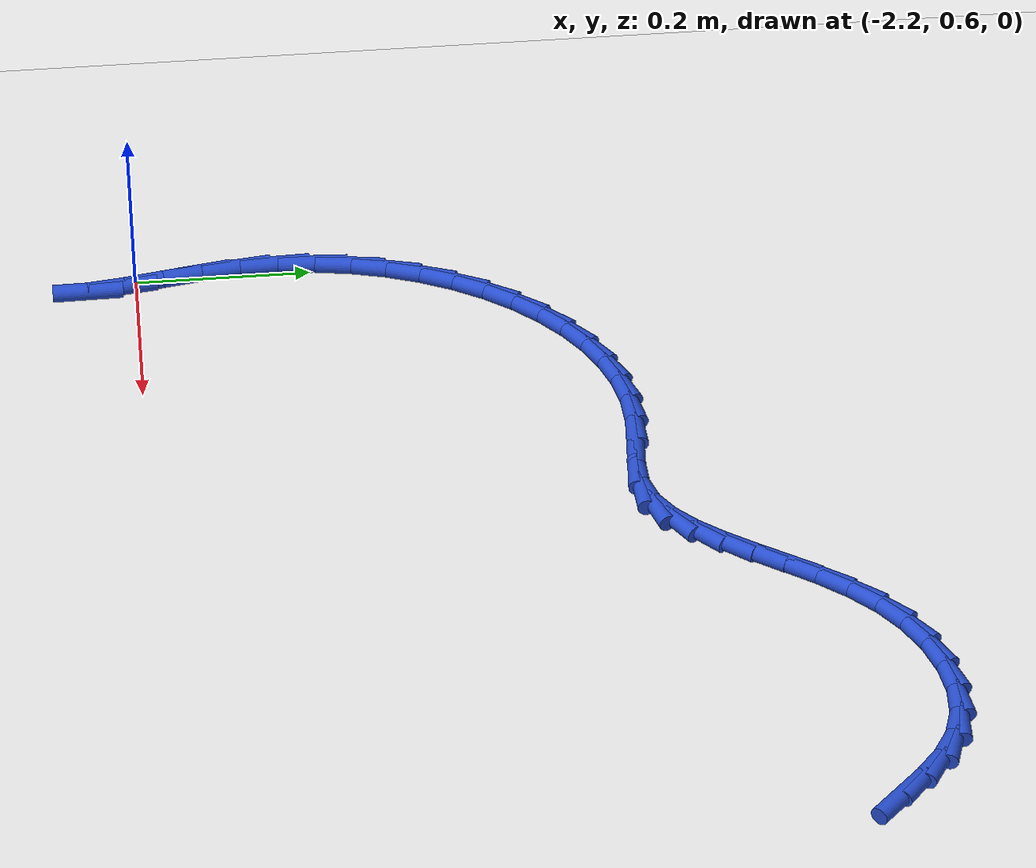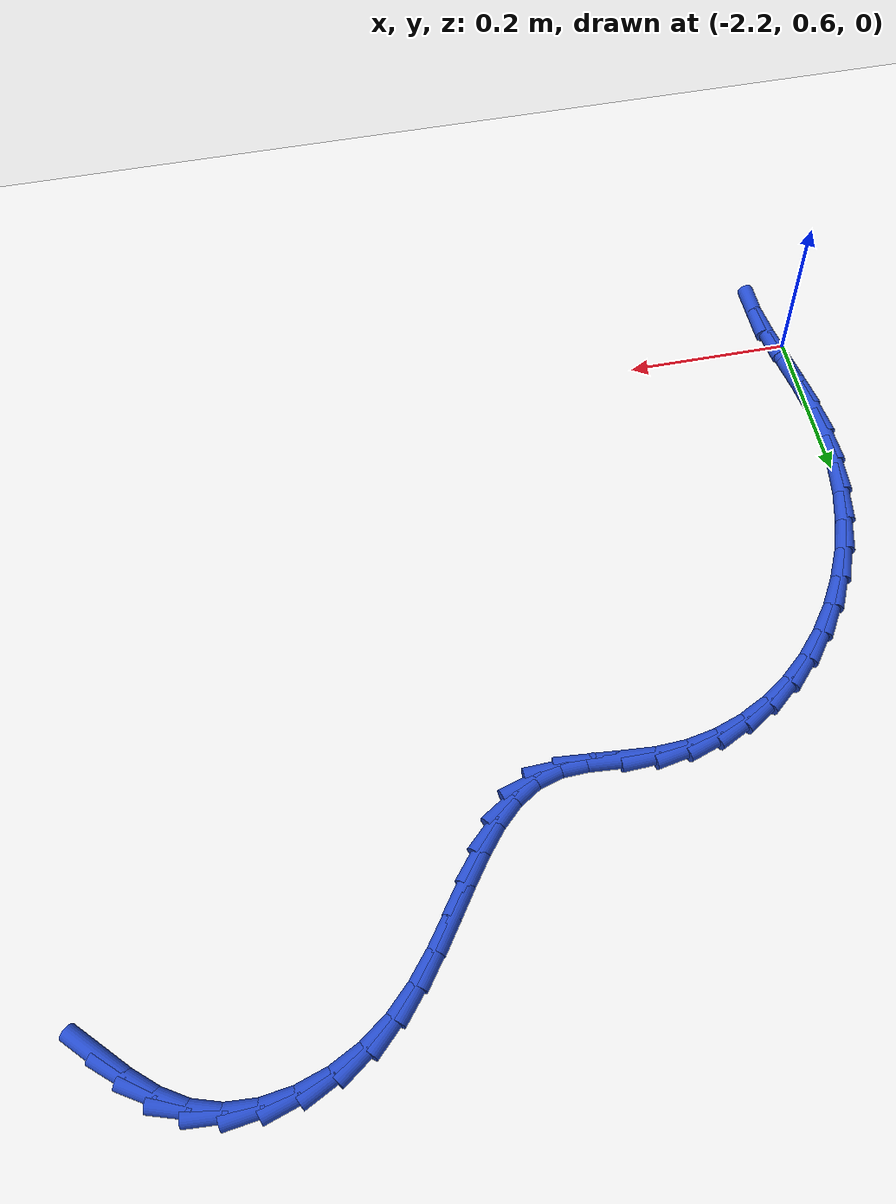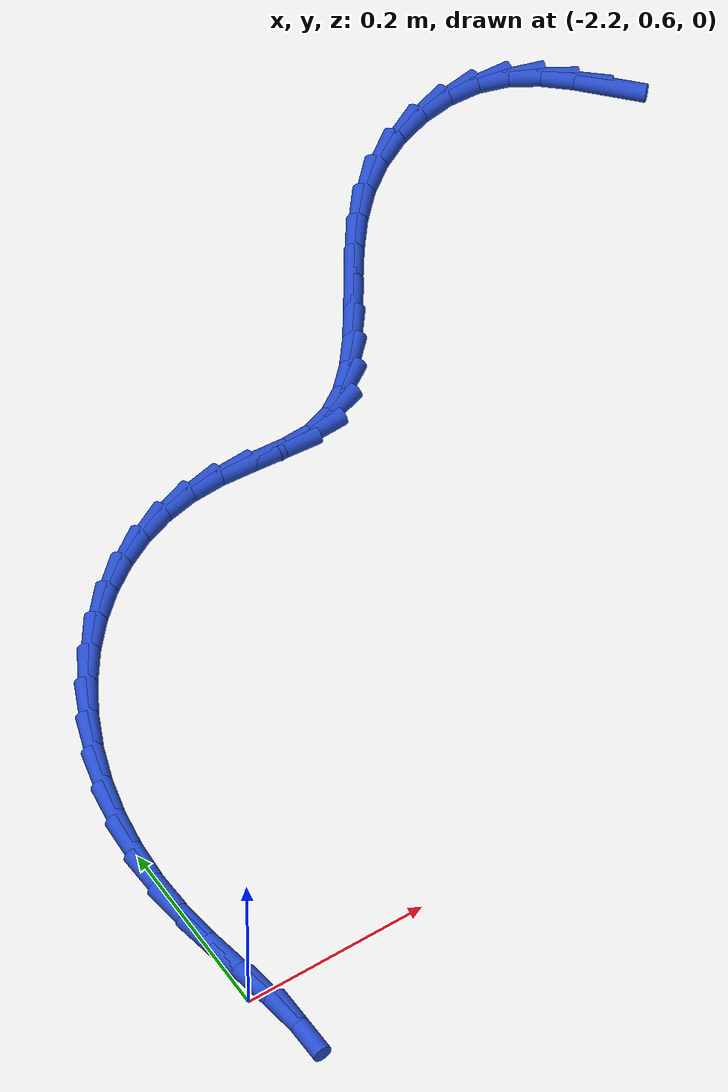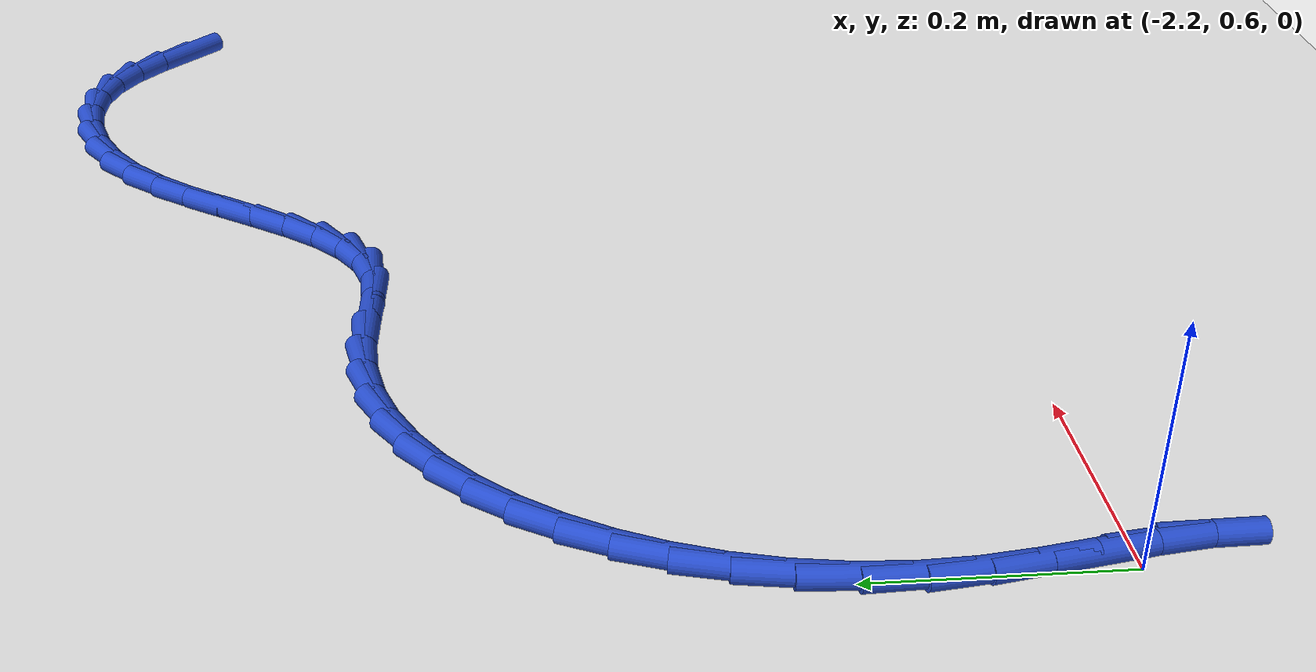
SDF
<sdf version="1.6">
 <world name="default">
  <model name="ground_plane">
   <static>1</static>
   <link name="link">
    <collision name="collision">
     <geometry><plane><normal>0 0 1</normal><size>100 100</size></plane></geometry>
     <surface><friction><ode><mu>100</mu><mu2>50</mu2></ode></friction></surface>
    </collision>
    <visual name="visual">
     <cast_shadows>0</cast_shadows>
     <geometry><plane><normal>0 0 1</normal><size>100 100</size></plane></geometry>
     <material>
      <script><uri>file://media/materials/scripts/gazebo.material</uri><name>Gazebo/WhiteGlow</name></script>
     </material>
    </visual>
   </link>
  </model>
  <model name="line">
   <link name="link_60">
    <pose>-1.2839289667337834 1.3361049260640108 0.01 0 1.57 -0.7997656641673492</pose>
    <collision name="collision">
     <geometry><cylinder><radius>0.01</radius><length>0.08</length></cylinder></geometry>
    </collision>
    <visual name="visual">
     <material>
      <script><name>Gazebo/Blue</name><uri>file://media/materials/scripts/gazebo.material</uri></script>
     </material>
     <geometry><cylinder><radius>0.01</radius><length>0.08</length></cylinder></geometry>
    </visual>
   </link>
   <link name="link_61">
    <pose>-1.3092704372058446 1.3621852500474994 0.01 0 1.57 -0.7133680254018131</pose>
    <collision name="collision">
     <geometry><cylinder><radius>0.01</radius><length>0.08</length></cylinder></geometry>
    </collision>
    <visual name="visual">
     <material>
      <script><name>Gazebo/Blue</name><uri>file://media/materials/scripts/gazebo.material</uri></script>
     </material>
     <geometry><cylinder><radius>0.01</radius><length>0.08</length></cylinder></geometry>
    </visual>
   </link>
   <link name="link_62">
    <pose>-1.3359364736219639 1.3852620906928759 0.01 0 1.57 -0.5502474265232398</pose>
    <collision name="collision">
     <geometry><cylinder><radius>0.01</radius><length>0.08</length></cylinder></geometry>
    </collision>
    <visual name="visual">
     <material>
      <script><name>Gazebo/Blue</name><uri>file://media/materials/scripts/gazebo.material</uri></script>
     </material>
     <geometry><cylinder><radius>0.01</radius><length>0.08</length></cylinder></geometry>
    </visual>
   </link>
   <link name="link_63">
    <pose>-1.364915919817387 1.403039407309422 0.01 0 1.57 -0.3114421813115</pose>
    <collision name="collision">
     <geometry><cylinder><radius>0.01</radius><length>0.08</length></cylinder></geometry>
    </collision>
    <visual name="visual">
     <material>
      <script><name>Gazebo/Blue</name><uri>file://media/materials/scripts/gazebo.material</uri></script>
     </material>
     <geometry><cylinder><radius>0.01</radius><length>0.08</length></cylinder></geometry>
    </visual>
   </link>
   <link name="link_64">
    <pose>-1.397059923987252 1.4133871538379097 0.01 0 1.57 -0.07186729860046163</pose>
    <collision name="collision">
     <geometry><cylinder><radius>0.01</radius><length>0.08</length></cylinder></geometry>
    </collision>
    <visual name="visual">
     <material>
      <script><name>Gazebo/Blue</name><uri>file://media/materials/scripts/gazebo.material</uri></script>
     </material>
     <geometry><cylinder><radius>0.01</radius><length>0.08</length></cylinder></geometry>
    </visual>
   </link>
   <link name="link_65">
    <pose>-1.4317988595312152 1.4158880544159635 0.01 0 1.57 0.13153948399275267</pose>
    <collision name="collision">
     <geometry><cylinder><radius>0.01</radius><length>0.08</length></cylinder></geometry>
    </collision>
    <visual name="visual">
     <material>
      <script><name>Gazebo/Blue</name><uri>file://media/materials/scripts/gazebo.material</uri></script>
     </material>
     <geometry><cylinder><radius>0.01</radius><length>0.08</length></cylinder></geometry>
    </visual>
   </link>
   <link name="link_66">
    <pose>-1.4677252564706045 1.4111348688128897 0.01 0 1.57 0.3091663968761701</pose>
    <collision name="collision">
     <geometry><cylinder><radius>0.01</radius><length>0.08</length></cylinder></geometry>
    </collision>
    <visual name="visual">
     <material>
      <script><name>Gazebo/Blue</name><uri>file://media/materials/scripts/gazebo.material</uri></script>
     </material>
     <geometry><cylinder><radius>0.01</radius><length>0.08</length></cylinder></geometry>
    </visual>
   </link>
   <link name="link_67">
    <pose>-1.503420828905158 1.3997333955907767 0.01 0 1.57 0.473484714630039</pose>
    <collision name="collision">
     <geometry><cylinder><radius>0.01</radius><length>0.08</length></cylinder></geometry>
    </collision>
    <visual name="visual">
     <material>
      <script><name>Gazebo/Blue</name><uri>file://media/materials/scripts/gazebo.material</uri></script>
     </material>
     <geometry><cylinder><radius>0.01</radius><length>0.08</length></cylinder></geometry>
    </visual>
   </link>
   <link name="link_68">
    <pose>-1.537467290934615 1.382289433311711 0.01 0 1.57 0.6359292841784508</pose>
    <collision name="collision">
     <geometry><cylinder><radius>0.01</radius><length>0.08</length></cylinder></geometry>
    </collision>
    <visual name="visual">
     <material>
      <script><name>Gazebo/Blue</name><uri>file://media/materials/scripts/gazebo.material</uri></script>
     </material>
     <geometry><cylinder><radius>0.01</radius><length>0.08</length></cylinder></geometry>
    </visual>
   </link>
   <link name="link_69">
    <pose>-1.5684558865743525 1.3594125485794604 0.01 0 1.57 0.786693013807335</pose>
    <collision name="collision">
     <geometry><cylinder><radius>0.01</radius><length>0.08</length></cylinder></geometry>
    </collision>
    <visual name="visual">
     <material>
      <script><name>Gazebo/Blue</name><uri>file://media/materials/scripts/gazebo.material</uri></script>
     </material>
     <geometry><cylinder><radius>0.01</radius><length>0.08</length></cylinder></geometry>
    </visual>
   </link>
   <link name="link_70">
    <pose>-1.5957714986103875 1.3320261055253844 0.01 0 1.57 0.8947837992267085</pose>
    <collision name="collision">
     <geometry><cylinder><radius>0.01</radius><length>0.08</length></cylinder></geometry>
    </collision>
    <visual name="visual">
     <material>
      <script><name>Gazebo/Blue</name><uri>file://media/materials/scripts/gazebo.material</uri></script>
     </material>
     <geometry><cylinder><radius>0.01</radius><length>0.08</length></cylinder></geometry>
    </visual>
   </link>
   <link name="link_71">
    <pose>-1.6201771908548332 1.3015983884820335 0.01 0 1.57 0.9593526547943908</pose>
    <collision name="collision">
     <geometry><cylinder><radius>0.01</radius><length>0.08</length></cylinder></geometry>
    </collision>
    <visual name="visual">
     <material>
      <script><name>Gazebo/Blue</name><uri>file://media/materials/scripts/gazebo.material</uri></script>
     </material>
     <geometry><cylinder><radius>0.01</radius><length>0.08</length></cylinder></geometry>
    </visual>
   </link>
   <link name="link_72">
    <pose>-1.6425737480313032 1.2696521353735961 0.01 0 1.57 0.9829344865480496</pose>
    <collision name="collision">
     <geometry><cylinder><radius>0.01</radius><length>0.08</length></cylinder></geometry>
    </collision>
    <visual name="visual">
     <material>
      <script><name>Gazebo/Blue</name><uri>file://media/materials/scripts/gazebo.material</uri></script>
     </material>
     <geometry><cylinder><radius>0.01</radius><length>0.08</length></cylinder></geometry>
    </visual>
   </link>
   <link name="link_73">
    <pose>-1.6638619548634106 1.237710084124262 0.01 0 1.57 0.9647178729612463</pose>
    <collision name="collision">
     <geometry><cylinder><radius>0.01</radius><length>0.08</length></cylinder></geometry>
    </collision>
    <visual name="visual">
     <material>
      <script><name>Gazebo/Blue</name><uri>file://media/materials/scripts/gazebo.material</uri></script>
     </material>
     <geometry><cylinder><radius>0.01</radius><length>0.08</length></cylinder></geometry>
    </visual>
   </link>
   <link name="link_74">
    <pose>-1.6849425960747675 1.2072949726582203 0.01 0 1.57 0.8987010847117252</pose>
    <collision name="collision">
     <geometry><cylinder><radius>0.01</radius><length>0.08</length></cylinder></geometry>
    </collision>
    <visual name="visual">
     <material>
      <script><name>Gazebo/Blue</name><uri>file://media/materials/scripts/gazebo.material</uri></script>
     </material>
     <geometry><cylinder><radius>0.01</radius><length>0.08</length></cylinder></geometry>
    </visual>
   </link>
   <link name="link_75">
    <pose>-1.7067164563889878 1.1799295388996611 0.01 0 1.57 0.7729457085765314</pose>
    <collision name="collision">
     <geometry><cylinder><radius>0.01</radius><length>0.08</length></cylinder></geometry>
    </collision>
    <visual name="visual">
     <material>
      <script><name>Gazebo/Blue</name><uri>file://media/materials/scripts/gazebo.material</uri></script>
     </material>
     <geometry><cylinder><radius>0.01</radius><length>0.08</length></cylinder></geometry>
    </visual>
   </link>
   <link name="link_76">
    <pose>-1.7300843205296834 1.1571365207727735 0.01 0 1.57 0.5733013969444873</pose>
    <collision name="collision">
     <geometry><cylinder><radius>0.01</radius><length>0.08</length></cylinder></geometry>
    </collision>
    <visual name="visual">
     <material>
      <script><name>Gazebo/Blue</name><uri>file://media/materials/scripts/gazebo.material</uri></script>
     </material>
     <geometry><cylinder><radius>0.01</radius><length>0.08</length></cylinder></geometry>
    </visual>
   </link>
   <link name="link_77">
    <pose>-1.7559469732204684 1.1404386562017472 0.01 0 1.57 0.30092045713008175</pose>
    <collision name="collision">
     <geometry><cylinder><radius>0.01</radius><length>0.08</length></cylinder></geometry>
    </collision>
    <visual name="visual">
     <material>
      <script><name>Gazebo/Blue</name><uri>file://media/materials/scripts/gazebo.material</uri></script>
     </material>
     <geometry><cylinder><radius>0.01</radius><length>0.08</length></cylinder></geometry>
    </visual>
   </link>
   <link name="link_78">
    <pose>-1.785205135758923 1.1313585296476723 0.01 0 1.57 0.03388666366810367</pose>
    <collision name="collision">
     <geometry><cylinder><radius>0.01</radius><length>0.08</length></cylinder></geometry>
    </collision>
    <visual name="visual">
     <material>
      <script><name>Gazebo/Blue</name><uri>file://media/materials/scripts/gazebo.material</uri></script>
     </material>
     <geometry><cylinder><radius>0.01</radius><length>0.08</length></cylinder></geometry>
    </visual>
   </link>
   <link name="link_79">
    <pose>-1.818271370715437 1.130237596173879 0.01 0 1.57 -0.08825191206194326</pose>
    <collision name="collision">
     <geometry><cylinder><radius>0.01</radius><length>0.08</length></cylinder></geometry>
    </collision>
    <visual name="visual">
     <material>
      <script><name>Gazebo/Blue</name><uri>file://media/materials/scripts/gazebo.material</uri></script>
     </material>
     <geometry><cylinder><radius>0.01</radius><length>0.08</length></cylinder></geometry>
    </visual>
   </link>
   <link name="link_80">
    <pose>-1.8538935572782735 1.1333895092884338 0.01 0 1.57 -0.07860380765954812</pose>
    <collision name="collision">
     <geometry><cylinder><radius>0.01</radius><length>0.08</length></cylinder></geometry>
    </collision>
    <visual name="visual">
     <material>
      <script><name>Gazebo/Blue</name><uri>file://media/materials/scripts/gazebo.material</uri></script>
     </material>
     <geometry><cylinder><radius>0.01</radius><length>0.08</length></cylinder></geometry>
    </visual>
   </link>
   <link name="link_81">
    <pose>-1.8904650389480016 1.1362701020816457 0.01 0 1.57 0.04029579589184466</pose>
    <collision name="collision">
     <geometry><cylinder><radius>0.01</radius><length>0.08</length></cylinder></geometry>
    </collision>
    <visual name="visual">
     <material>
      <script><name>Gazebo/Blue</name><uri>file://media/materials/scripts/gazebo.material</uri></script>
     </material>
     <geometry><cylinder><radius>0.01</radius><length>0.08</length></cylinder></geometry>
    </visual>
   </link>
   <link name="link_82">
    <pose>-1.9265137124831686 1.1348167053539886 0.01 0 1.57 0.1898216692638006</pose>
    <collision name="collision">
     <geometry><cylinder><radius>0.01</radius><length>0.08</length></cylinder></geometry>
    </collision>
    <visual name="visual">
     <material>
      <script><name>Gazebo/Blue</name><uri>file://media/materials/scripts/gazebo.material</uri></script>
     </material>
     <geometry><cylinder><radius>0.01</radius><length>0.08</length></cylinder></geometry>
    </visual>
   </link>
   <link name="link_83">
    <pose>-1.961444553985602 1.12810527101228 0.01 0 1.57 0.33365930700681</pose>
    <collision name="collision">
     <geometry><cylinder><radius>0.01</radius><length>0.08</length></cylinder></geometry>
    </collision>
    <visual name="visual">
     <material>
      <script><name>Gazebo/Blue</name><uri>file://media/materials/scripts/gazebo.material</uri></script>
     </material>
     <geometry><cylinder><radius>0.01</radius><length>0.08</length></cylinder></geometry>
    </visual>
   </link>
   <link name="link_84">
    <pose>-1.9950140065904416 1.1164694728073028 0.01 0 1.57 0.469646203046393</pose>
    <collision name="collision">
     <geometry><cylinder><radius>0.01</radius><length>0.08</length></cylinder></geometry>
    </collision>
    <visual name="visual">
     <material>
      <script><name>Gazebo/Blue</name><uri>file://media/materials/scripts/gazebo.material</uri></script>
     </material>
     <geometry><cylinder><radius>0.01</radius><length>0.08</length></cylinder></geometry>
    </visual>
   </link>
   <link name="link_85">
    <pose>-2.02697945159726 1.1002463417034327 0.01 0 1.57 0.5970094565190943</pose>
    <collision name="collision">
     <geometry><cylinder><radius>0.01</radius><length>0.08</length></cylinder></geometry>
    </collision>
    <visual name="visual">
     <material>
      <script><name>Gazebo/Blue</name><uri>file://media/materials/scripts/gazebo.material</uri></script>
     </material>
     <geometry><cylinder><radius>0.01</radius><length>0.08</length></cylinder></geometry>
    </visual>
   </link>
   <link name="link_86">
    <pose>-2.057098270305628 1.0797729086650436 0.01 0 1.57 0.7160109105653022</pose>
    <collision name="collision">
     <geometry><cylinder><radius>0.01</radius><length>0.08</length></cylinder></geometry>
    </collision>
    <visual name="visual">
     <material>
      <script><name>Gazebo/Blue</name><uri>file://media/materials/scripts/gazebo.material</uri></script>
     </material>
     <geometry><cylinder><radius>0.01</radius><length>0.08</length></cylinder></geometry>
    </visual>
   </link>
   <link name="link_87">
    <pose>-2.085127844015118 1.0553862046565106 0.01 0 1.57 0.8275871734448168</pose>
    <collision name="collision">
     <geometry><cylinder><radius>0.01</radius><length>0.08</length></cylinder></geometry>
    </collision>
    <visual name="visual">
     <material>
      <script><name>Gazebo/Blue</name><uri>file://media/materials/scripts/gazebo.material</uri></script>
     </material>
     <geometry><cylinder><radius>0.01</radius><length>0.08</length></cylinder></geometry>
    </visual>
   </link>
   <link name="link_88">
    <pose>-2.1108255540253036 1.0274232606422087 0.01 0 1.57 0.9330298265906954</pose>
    <collision name="collision">
     <geometry><cylinder><radius>0.01</radius><length>0.08</length></cylinder></geometry>
    </collision>
    <visual name="visual">
     <material>
      <script><name>Gazebo/Blue</name><uri>file://media/materials/scripts/gazebo.material</uri></script>
     </material>
     <geometry><cylinder><radius>0.01</radius><length>0.08</length></cylinder></geometry>
    </visual>
   </link>
   <link name="link_89">
    <pose>-2.133948781635756 0.9962211075865121 0.01 0 1.57 1.033757217760439</pose>
    <collision name="collision">
     <geometry><cylinder><radius>0.01</radius><length>0.08</length></cylinder></geometry>
    </collision>
    <visual name="visual">
     <material>
      <script><name>Gazebo/Blue</name><uri>file://media/materials/scripts/gazebo.material</uri></script>
     </material>
     <geometry><cylinder><radius>0.01</radius><length>0.08</length></cylinder></geometry>
    </visual>
   </link>
   <link name="link_90">
    <pose>-2.154254908146048 0.9621167764537962 0.01 0 1.57 1.1311729747831896</pose>
    <collision name="collision">
     <geometry><cylinder><radius>0.01</radius><length>0.08</length></cylinder></geometry>
    </collision>
    <visual name="visual">
     <material>
      <script><name>Gazebo/Blue</name><uri>file://media/materials/scripts/gazebo.material</uri></script>
     </material>
     <geometry><cylinder><radius>0.01</radius><length>0.08</length></cylinder></geometry>
    </visual>
   </link>
   <link name="link_91">
    <pose>-2.171501314855751 0.9254472982084357 0.01 0 1.57 1.2265856723273396</pose>
    <collision name="collision">
     <geometry><cylinder><radius>0.01</radius><length>0.08</length></cylinder></geometry>
    </collision>
    <visual name="visual">
     <material>
      <script><name>Gazebo/Blue</name><uri>file://media/materials/scripts/gazebo.material</uri></script>
     </material>
     <geometry><cylinder><radius>0.01</radius><length>0.08</length></cylinder></geometry>
    </visual>
   </link>
   <link name="link_92">
    <pose>-2.185445383064437 0.8865497038148052 0.01 0 1.57 1.32116343839355</pose>
    <collision name="collision">
     <geometry><cylinder><radius>0.01</radius><length>0.08</length></cylinder></geometry>
    </collision>
    <visual name="visual">
     <material>
      <script><name>Gazebo/Blue</name><uri>file://media/materials/scripts/gazebo.material</uri></script>
     </material>
     <geometry><cylinder><radius>0.01</radius><length>0.08</length></cylinder></geometry>
    </visual>
   </link>
   <link name="link_93">
    <pose>-2.1958444940716806 0.8457610242372794 0.01 0 1.57 1.4159037224740323</pose>
    <collision name="collision">
     <geometry><cylinder><radius>0.01</radius><length>0.08</length></cylinder></geometry>
    </collision>
    <visual name="visual">
     <material>
      <script><name>Gazebo/Blue</name><uri>file://media/materials/scripts/gazebo.material</uri></script>
     </material>
     <geometry><cylinder><radius>0.01</radius><length>0.08</length></cylinder></geometry>
    </visual>
   </link>
   <link name="link_94">
    <pose>-2.2024560291770507 0.8034182904402332 0.01 0 1.57 1.5116057944945398</pose>
    <collision name="collision">
     <geometry><cylinder><radius>0.01</radius><length>0.08</length></cylinder></geometry>
    </collision>
    <visual name="visual">
     <material>
      <script><name>Gazebo/Blue</name><uri>file://media/materials/scripts/gazebo.material</uri></script>
     </material>
     <geometry><cylinder><radius>0.01</radius><length>0.08</length></cylinder></geometry>
    </visual>
   </link>
   <link name="link_95">
    <pose>-2.205037369680122 0.7598585333880417 0.01 0 1.57 -1.5327617688962347</pose>
    <collision name="collision">
     <geometry><cylinder><radius>0.01</radius><length>0.08</length></cylinder></geometry>
    </collision>
    <visual name="visual">
     <material>
      <script><name>Gazebo/Blue</name><uri>file://media/materials/scripts/gazebo.material</uri></script>
     </material>
     <geometry><cylinder><radius>0.01</radius><length>0.08</length></cylinder></geometry>
    </visual>
   </link>
   <link name="link_96">
    <pose>-2.203346313455751 0.7154189290851655 0.01 0 1.57 -1.4450833881588663</pose>
    <collision name="collision">
     <geometry><cylinder><radius>0.01</radius><length>0.08</length></cylinder></geometry>
    </collision>
    <visual name="visual">
     <material>
      <script><name>Gazebo/Blue</name><uri>file://media/materials/scripts/gazebo.material</uri></script>
     </material>
     <geometry><cylinder><radius>0.01</radius><length>0.08</length></cylinder></geometry>
    </visual>
   </link>
   <link name="link_97">
    <pose>-2.1976854525432996 0.6706263359190627 0.01 0 1.57 -1.397506088907815</pose>
    <collision name="collision">
     <geometry><cylinder><radius>0.01</radius><length>0.08</length></cylinder></geometry>
    </collision>
    <visual name="visual">
     <material>
      <script><name>Gazebo/Blue</name><uri>file://media/materials/scripts/gazebo.material</uri></script>
     </material>
     <geometry><cylinder><radius>0.01</radius><length>0.08</length></cylinder></geometry>
    </visual>
   </link>
   <link name="link_98">
    <pose>-2.1899736306514486 0.6265703467705688 0.01 0 1.57 -1.3935556427788676</pose>
    <collision name="collision">
     <geometry><cylinder><radius>0.01</radius><length>0.08</length></cylinder></geometry>
    </collision>
    <visual name="visual">
     <material>
      <script><name>Gazebo/Blue</name><uri>file://media/materials/scripts/gazebo.material</uri></script>
     </material>
     <geometry><cylinder><radius>0.01</radius><length>0.08</length></cylinder></geometry>
    </visual>
   </link>
   <link name="link_99">
    <pose>-2.1824280244308643 0.5844444258668896 0.01 0 1.57 -1.4392048320616948</pose>
    <collision name="collision">
     <geometry><cylinder><radius>0.01</radius><length>0.08</length></cylinder></geometry>
    </collision>
    <visual name="visual">
     <material>
      <script><name>Gazebo/Blue</name><uri>file://media/materials/scripts/gazebo.material</uri></script>
     </material>
     <geometry><cylinder><radius>0.01</radius><length>0.08</length></cylinder></geometry>
    </visual>
   </link>
   <link name="link_100">
    <pose>-2.1772658105322096 0.5454420374352299 0.01 0 1.57 -1.5546051921928445</pose>
    <collision name="collision">
     <geometry><cylinder><radius>0.01</radius><length>0.08</length></cylinder></geometry>
    </collision>
    <visual name="visual">
     <material>
      <script><name>Gazebo/Blue</name><uri>file://media/materials/scripts/gazebo.material</uri></script>
     </material>
     <geometry><cylinder><radius>0.01</radius><length>0.08</length></cylinder></geometry>
    </visual>
   </link>
  </model>
 </world>
</sdf>
